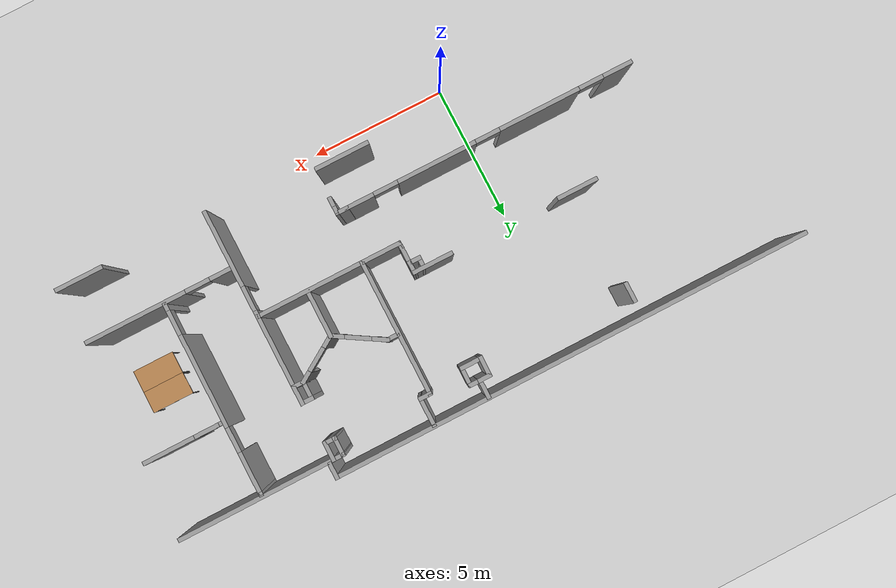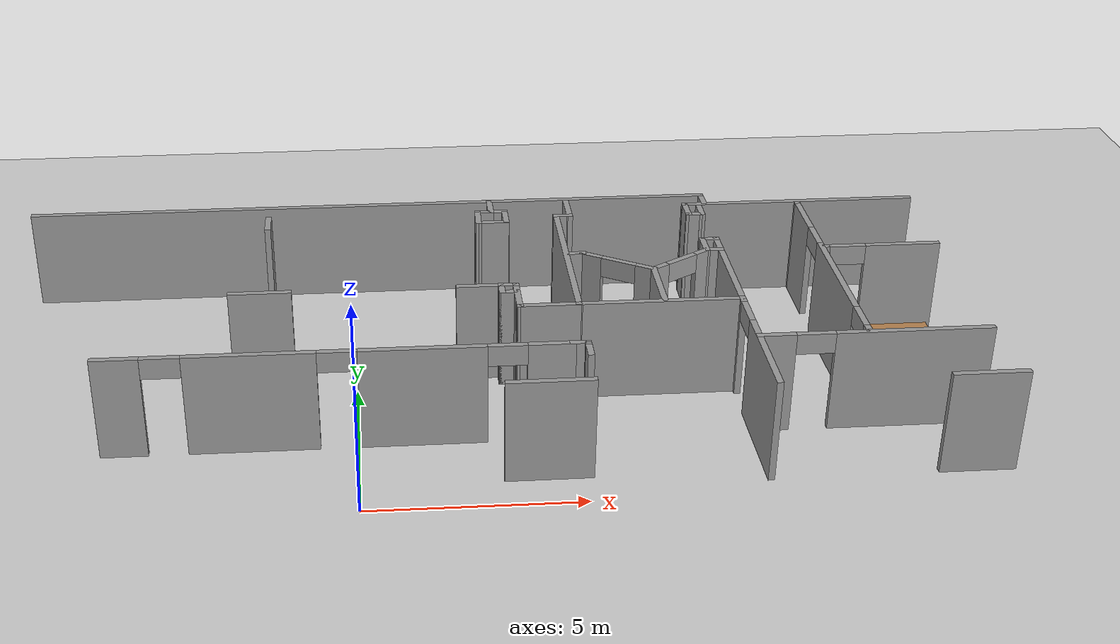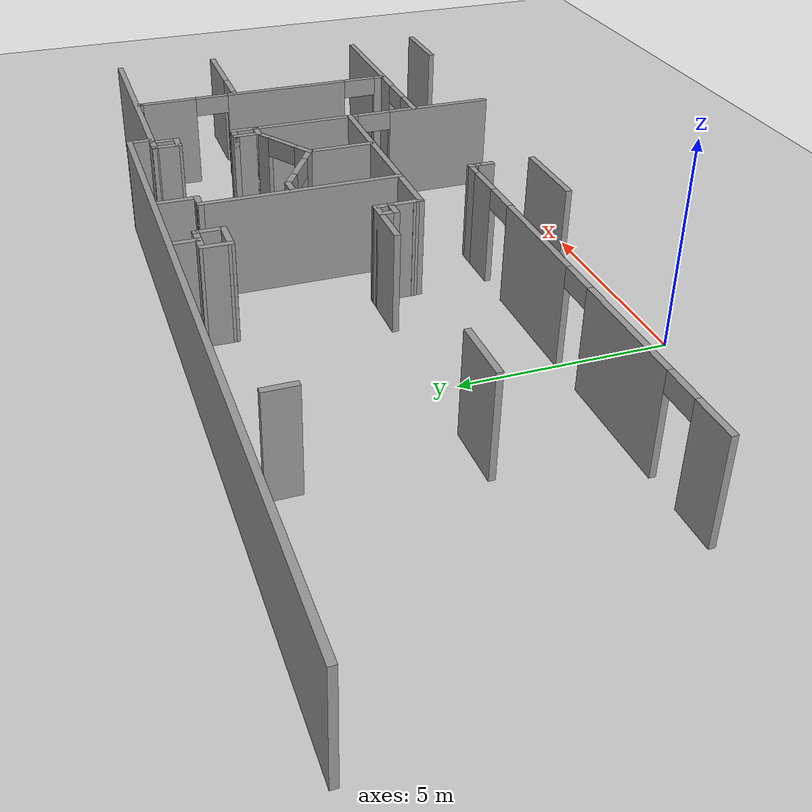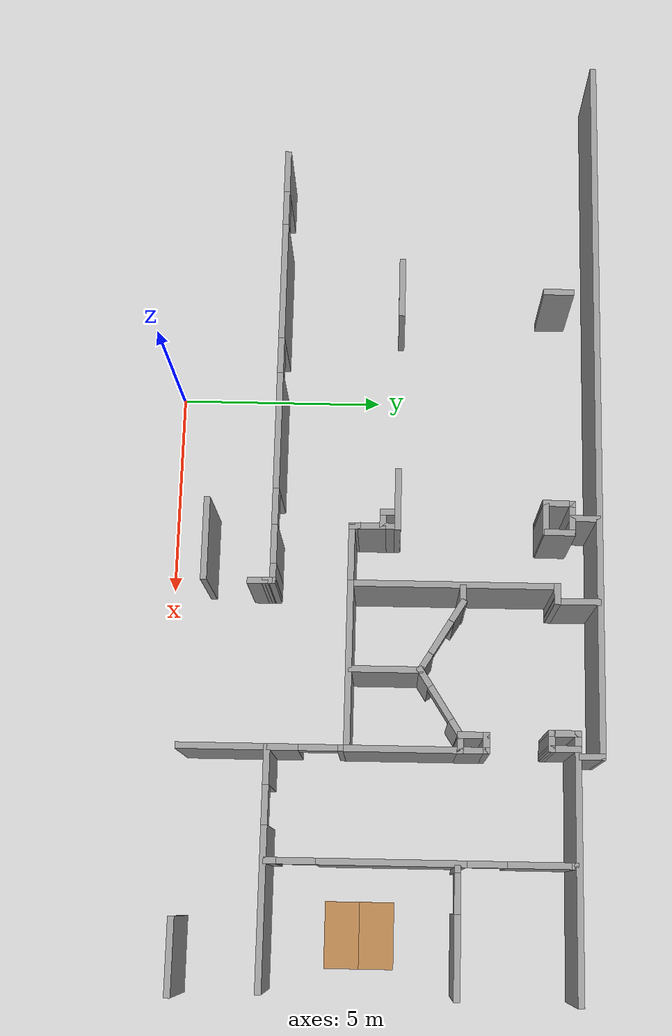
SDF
<sdf version="1.6">
 <world name="default">
  <model name="ground_plane">
   <static>1</static>
   <link name="link">
    <collision name="collision">
     <geometry><plane><normal>0 0 1</normal><size>100 100</size></plane></geometry>
     <surface><friction><ode><mu>100</mu><mu2>50</mu2></ode></friction></surface>
    </collision>
    <visual name="visual">
     <cast_shadows>0</cast_shadows>
     <geometry><plane><normal>0 0 1</normal><size>100 100</size></plane></geometry>
     <material>
      <script><uri>file://media/materials/scripts/gazebo.material</uri><name>Gazebo/Grey</name></script>
     </material>
    </visual>
   </link>
  </model>
  <model name="office02">
   <pose>-0.0751 -0.58893 0 0 -0 0</pose>
   <link name="Wall_150">
    <pose>9.1374 3.11262 0 0 -0 1.5708</pose>
    <visual name="Wall_150_Visual_0">
     <pose>-0.589768 0 1.25 0 -0 0</pose>
     <geometry><box><size>2.82046 0.15 2.5</size></box></geometry>
     <material>
      <script><uri>file://media/materials/scripts/gazebo.material</uri><name>Gazebo/Grey</name></script>
      <ambient>1 1 1 1</ambient>
     </material>
     <meta><layer>0</layer></meta>
    </visual>
    <collision name="Wall_150_Collision_0">
     <geometry><box><size>2.82046 0.15 2.5</size></box></geometry>
     <pose>-0.589768 0 1.25 0 -0 0</pose>
    </collision>
    <visual name="Wall_150_Visual_1">
     <pose>1.86023 0 1.25 0 -0 0</pose>
     <geometry><box><size>0.279535 0.15 2.5</size></box></geometry>
     <material>
      <script><uri>file://media/materials/scripts/gazebo.material</uri><name>Gazebo/Grey</name></script>
      <ambient>1 1 1 1</ambient>
     </material>
     <meta><layer>0</layer></meta>
    </visual>
    <collision name="Wall_150_Collision_1">
     <geometry><box><size>0.279535 0.15 2.5</size></box></geometry>
     <pose>1.86023 0 1.25 0 -0 0</pose>
    </collision>
    <visual name="Wall_150_Visual_2">
     <pose>1.27046 0 2.25 0 -0 0</pose>
     <geometry><box><size>0.9 0.15 0.5</size></box></geometry>
     <material>
      <script><uri>file://media/materials/scripts/gazebo.material</uri><name>Gazebo/Grey</name></script>
      <ambient>1 1 1 1</ambient>
     </material>
     <meta><layer>0</layer></meta>
    </visual>
    <collision name="Wall_150_Collision_2">
     <geometry><box><size>0.9 0.15 0.5</size></box></geometry>
     <pose>1.27046 0 2.25 0 -0 0</pose>
    </collision>
   </link>
   <link name="Wall_151">
    <collision name="Wall_151_Collision">
     <geometry><box><size>4 0.15 2.5</size></box></geometry>
     <pose>0 0 1.25 0 -0 0</pose>
    </collision>
    <visual name="Wall_151_Visual">
     <pose>0 0 1.25 0 -0 0</pose>
     <geometry><box><size>4 0.15 2.5</size></box></geometry>
     <material>
      <script><uri>file://media/materials/scripts/gazebo.material</uri><name>Gazebo/Grey</name></script>
      <ambient>1 1 1 1</ambient>
     </material>
     <meta><layer>0</layer></meta>
    </visual>
    <pose>7.2124 5.03762 0 0 -0 3.14159</pose>
   </link>
   <link name="Wall_153">
    <collision name="Wall_153_Collision">
     <geometry><box><size>5 0.15 2.5</size></box></geometry>
     <pose>0 0 1.25 0 -0 0</pose>
    </collision>
    <visual name="Wall_153_Visual">
     <pose>0 0 1.25 0 -0 0</pose>
     <geometry><box><size>5 0.15 2.5</size></box></geometry>
     <material>
      <script><uri>file://media/materials/scripts/gazebo.material</uri><name>Gazebo/Grey</name></script>
      <ambient>1 1 1 1</ambient>
     </material>
     <meta><layer>0</layer></meta>
    </visual>
    <pose>5.2874 7.46262 0 0 -0 1.5708</pose>
   </link>
   <link name="Wall_154">
    <collision name="Wall_154_Collision">
     <geometry><box><size>0.5 0.15 2.5</size></box></geometry>
     <pose>0 0 1.25 0 -0 0</pose>
    </collision>
    <visual name="Wall_154_Visual">
     <pose>0 0 1.25 0 -0 0</pose>
     <geometry><box><size>0.5 0.15 2.5</size></box></geometry>
     <material>
      <script><uri>file://media/materials/scripts/gazebo.material</uri><name>Gazebo/Grey</name></script>
      <ambient>1 1 1 1</ambient>
     </material>
     <meta><layer>0</layer></meta>
    </visual>
    <pose>5.46235 9.88749 0 0 -0 -0.000714</pose>
   </link>
   <link name="Wall_155">
    <collision name="Wall_155_Collision">
     <geometry><box><size>1.1 0.15 2.5</size></box></geometry>
     <pose>0 0 1.25 0 -0 0</pose>
    </collision>
    <visual name="Wall_155_Visual">
     <pose>0 0 1.25 0 -0 0</pose>
     <geometry><box><size>1.1 0.15 2.5</size></box></geometry>
     <material>
      <script><uri>file://media/materials/scripts/gazebo.material</uri><name>Gazebo/Grey</name></script>
      <ambient>1 1 1 1</ambient>
     </material>
     <meta><layer>0</layer></meta>
    </visual>
    <pose>5.6373 10.3624 0 0 -0 1.5708</pose>
   </link>
   <link name="Wall_181">
    <collision name="Wall_181_Collision">
     <geometry><box><size>1.75 0.15 2.5</size></box></geometry>
     <pose>0 0 1.25 0 -0 0</pose>
    </collision>
    <visual name="Wall_181_Visual">
     <pose>0 0 1.25 0 -0 0</pose>
     <geometry><box><size>1.75 0.15 2.5</size></box></geometry>
     <material>
      <script><uri>file://media/materials/scripts/gazebo.material</uri><name>Gazebo/Grey</name></script>
      <ambient>1 1 1 1</ambient>
     </material>
     <meta><layer>0</layer></meta>
    </visual>
    <pose>13.8007 1.21968 0 0 -0 0</pose>
   </link>
   <link name="Wall_183">
    <pose>11.8204 3.21781 0 0 -0 0</pose>
    <visual name="Wall_183_Visual_0">
     <pose>-2.28982 0 1.25 0 -0 0</pose>
     <geometry><box><size>0.920353 0.15 2.5</size></box></geometry>
     <material>
      <script><uri>file://media/materials/scripts/gazebo.material</uri><name>Gazebo/Grey</name></script>
      <ambient>1 1 1 1</ambient>
     </material>
     <meta><layer>0</layer></meta>
    </visual>
    <collision name="Wall_183_Collision_0">
     <geometry><box><size>0.920353 0.15 2.5</size></box></geometry>
     <pose>-2.28982 0 1.25 0 -0 0</pose>
    </collision>
    <visual name="Wall_183_Visual_1">
     <pose>0.910176 0 1.25 0 -0 0</pose>
     <geometry><box><size>3.67965 0.15 2.5</size></box></geometry>
     <material>
      <script><uri>file://media/materials/scripts/gazebo.material</uri><name>Gazebo/Grey</name></script>
      <ambient>1 1 1 1</ambient>
     </material>
     <meta><layer>0</layer></meta>
    </visual>
    <collision name="Wall_183_Collision_1">
     <geometry><box><size>3.67965 0.15 2.5</size></box></geometry>
     <pose>0.910176 0 1.25 0 -0 0</pose>
    </collision>
    <visual name="Wall_183_Visual_2">
     <pose>-1.37965 0 2.25 0 -0 0</pose>
     <geometry><box><size>0.9 0.15 0.5</size></box></geometry>
     <material>
      <script><uri>file://media/materials/scripts/gazebo.material</uri><name>Gazebo/Grey</name></script>
      <ambient>1 1 1 1</ambient>
     </material>
     <meta><layer>0</layer></meta>
    </visual>
    <collision name="Wall_183_Collision_2">
     <geometry><box><size>0.9 0.15 0.5</size></box></geometry>
     <pose>-1.37965 0 2.25 0 -0 0</pose>
    </collision>
   </link>
   <link name="Wall_185">
    <pose>11.6733 6.76637 0 0 -0 -1.5708</pose>
    <visual name="Wall_185_Visual_0">
     <pose>-2.74906 0 1.25 0 -0 0</pose>
     <geometry><box><size>1.60189 0.15 2.5</size></box></geometry>
     <material>
      <script><uri>file://media/materials/scripts/gazebo.material</uri><name>Gazebo/Grey</name></script>
      <ambient>1 1 1 1</ambient>
     </material>
     <meta><layer>0</layer></meta>
    </visual>
    <collision name="Wall_185_Collision_0">
     <geometry><box><size>1.60189 0.15 2.5</size></box></geometry>
     <pose>-2.74906 0 1.25 0 -0 0</pose>
    </collision>
    <visual name="Wall_185_Visual_1">
     <pose>0.654378 0 1.25 0 -0 0</pose>
     <geometry><box><size>3.40498 0.15 2.5</size></box></geometry>
     <material>
      <script><uri>file://media/materials/scripts/gazebo.material</uri><name>Gazebo/Grey</name></script>
      <ambient>1 1 1 1</ambient>
     </material>
     <meta><layer>0</layer></meta>
    </visual>
    <collision name="Wall_185_Collision_1">
     <geometry><box><size>3.40498 0.15 2.5</size></box></geometry>
     <pose>0.654378 0 1.25 0 -0 0</pose>
    </collision>
    <visual name="Wall_185_Visual_2">
     <pose>3.40343 0 1.25 0 -0 0</pose>
     <geometry><box><size>0.293131 0.15 2.5</size></box></geometry>
     <material>
      <script><uri>file://media/materials/scripts/gazebo.material</uri><name>Gazebo/Grey</name></script>
      <ambient>1 1 1 1</ambient>
     </material>
     <meta><layer>0</layer></meta>
    </visual>
    <collision name="Wall_185_Collision_2">
     <geometry><box><size>0.293131 0.15 2.5</size></box></geometry>
     <pose>3.40343 0 1.25 0 -0 0</pose>
    </collision>
    <visual name="Wall_185_Visual_3">
     <pose>-1.49811 0 2.25 0 -0 0</pose>
     <geometry><box><size>0.9 0.15 0.5</size></box></geometry>
     <material>
      <script><uri>file://media/materials/scripts/gazebo.material</uri><name>Gazebo/Grey</name></script>
      <ambient>1 1 1 1</ambient>
     </material>
     <meta><layer>0</layer></meta>
    </visual>
    <collision name="Wall_185_Collision_3">
     <geometry><box><size>0.9 0.15 0.5</size></box></geometry>
     <pose>-1.49811 0 2.25 0 -0 0</pose>
    </collision>
    <visual name="Wall_185_Visual_4">
     <pose>2.80687 0 2.25 0 -0 0</pose>
     <geometry><box><size>0.9 0.15 0.5</size></box></geometry>
     <material>
      <script><uri>file://media/materials/scripts/gazebo.material</uri><name>Gazebo/Grey</name></script>
      <ambient>1 1 1 1</ambient>
     </material>
     <meta><layer>0</layer></meta>
    </visual>
    <collision name="Wall_185_Collision_4">
     <geometry><box><size>0.9 0.15 0.5</size></box></geometry>
     <pose>2.80687 0 2.25 0 -0 0</pose>
    </collision>
   </link>
   <link name="Wall_187">
    <pose>13.1703 7.60137 0 0 -0 0</pose>
    <visual name="Wall_187_Visual_0">
     <pose>-1.38981 0 1.25 0 -0 0</pose>
     <geometry><box><size>0.170376 0.15 2.5</size></box></geometry>
     <material>
      <script><uri>file://media/materials/scripts/gazebo.material</uri><name>Gazebo/Grey</name></script>
      <ambient>1 1 1 1</ambient>
     </material>
     <meta><layer>0</layer></meta>
    </visual>
    <collision name="Wall_187_Collision_0">
     <geometry><box><size>0.170376 0.15 2.5</size></box></geometry>
     <pose>-1.38981 0 1.25 0 -0 0</pose>
    </collision>
    <visual name="Wall_187_Visual_1">
     <pose>0.535188 0 1.25 0 -0 0</pose>
     <geometry><box><size>1.87962 0.15 2.5</size></box></geometry>
     <material>
      <script><uri>file://media/materials/scripts/gazebo.material</uri><name>Gazebo/Grey</name></script>
      <ambient>1 1 1 1</ambient>
     </material>
     <meta><layer>0</layer></meta>
    </visual>
    <collision name="Wall_187_Collision_1">
     <geometry><box><size>1.87962 0.15 2.5</size></box></geometry>
     <pose>0.535188 0 1.25 0 -0 0</pose>
    </collision>
    <visual name="Wall_187_Visual_2">
     <pose>-0.854624 0 2.25 0 -0 0</pose>
     <geometry><box><size>0.9 0.15 0.5</size></box></geometry>
     <material>
      <script><uri>file://media/materials/scripts/gazebo.material</uri><name>Gazebo/Grey</name></script>
      <ambient>1 1 1 1</ambient>
     </material>
     <meta><layer>0</layer></meta>
    </visual>
    <collision name="Wall_187_Collision_2">
     <geometry><box><size>0.9 0.15 0.5</size></box></geometry>
     <pose>-0.854624 0 2.25 0 -0 0</pose>
    </collision>
   </link>
   <link name="Wall_189">
    <collision name="Wall_189_Collision">
     <geometry><box><size>2.75 0.15 2.5</size></box></geometry>
     <pose>0 0 1.25 0 -0 0</pose>
    </collision>
    <visual name="Wall_189_Visual">
     <pose>0 0 1.25 0 -0 0</pose>
     <geometry><box><size>2.75 0.15 2.5</size></box></geometry>
     <material>
      <script><uri>file://media/materials/scripts/gazebo.material</uri><name>Gazebo/Grey</name></script>
      <ambient>1 1 1 1</ambient>
     </material>
     <meta><layer>0</layer></meta>
    </visual>
    <pose>9.1374 6.33762 0 0 -0 1.5708</pose>
   </link>
   <link name="Wall_19">
    <collision name="Wall_19_Collision">
     <geometry><box><size>0.626189 0.15 2.5</size></box></geometry>
     <pose>0 0 1.25 0 -0 0</pose>
    </collision>
    <visual name="Wall_19_Visual">
     <pose>0 0 1.25 0 -0 0</pose>
     <geometry><box><size>0.626189 0.15 2.5</size></box></geometry>
     <material>
      <script><uri>file://media/materials/scripts/gazebo.material</uri><name>Gazebo/Grey</name></script>
      <ambient>1 1 1 1</ambient>
     </material>
     <meta><layer>0</layer></meta>
    </visual>
    <pose>9.23158 10.6582 0 0 -0 1.57661</pose>
   </link>
   <link name="Wall_191">
    <collision name="Wall_191_Collision">
     <geometry><box><size>0.75 0.15 2.5</size></box></geometry>
     <pose>0 0 1.25 0 -0 0</pose>
    </collision>
    <visual name="Wall_191_Visual">
     <pose>0 0 1.25 0 -0 0</pose>
     <geometry><box><size>0.75 0.15 2.5</size></box></geometry>
     <material>
      <script><uri>file://media/materials/scripts/gazebo.material</uri><name>Gazebo/Grey</name></script>
      <ambient>1 1 1 1</ambient>
     </material>
     <meta><layer>0</layer></meta>
    </visual>
    <pose>9.1374 7.93762 0 0 -0 1.5708</pose>
   </link>
   <link name="Wall_192">
    <collision name="Wall_192_Collision">
     <geometry><box><size>0.5 0.15 2.5</size></box></geometry>
     <pose>0 0 1.25 0 -0 0</pose>
    </collision>
    <visual name="Wall_192_Visual">
     <pose>0 0 1.25 0 -0 0</pose>
     <geometry><box><size>0.5 0.15 2.5</size></box></geometry>
     <material>
      <script><uri>file://media/materials/scripts/gazebo.material</uri><name>Gazebo/Grey</name></script>
      <ambient>1 1 1 1</ambient>
     </material>
     <meta><layer>0</layer></meta>
    </visual>
    <pose>8.9624 8.23762 0 0 -0 3.14159</pose>
   </link>
   <link name="Wall_193">
    <collision name="Wall_193_Collision">
     <geometry><box><size>0.75 0.15 2.5</size></box></geometry>
     <pose>0 0 1.25 0 -0 0</pose>
    </collision>
    <visual name="Wall_193_Visual">
     <pose>0 0 1.25 0 -0 0</pose>
     <geometry><box><size>0.75 0.15 2.5</size></box></geometry>
     <material>
      <script><uri>file://media/materials/scripts/gazebo.material</uri><name>Gazebo/Grey</name></script>
      <ambient>1 1 1 1</ambient>
     </material>
     <meta><layer>0</layer></meta>
    </visual>
    <pose>8.7874 7.93762 0 0 -0 -1.5708</pose>
   </link>
   <link name="Wall_194">
    <collision name="Wall_194_Collision">
     <geometry><box><size>0.5 0.15 2.5</size></box></geometry>
     <pose>0 0 1.25 0 -0 0</pose>
    </collision>
    <visual name="Wall_194_Visual">
     <pose>0 0 1.25 0 -0 0</pose>
     <geometry><box><size>0.5 0.15 2.5</size></box></geometry>
     <material>
      <script><uri>file://media/materials/scripts/gazebo.material</uri><name>Gazebo/Grey</name></script>
      <ambient>1 1 1 1</ambient>
     </material>
     <meta><layer>0</layer></meta>
    </visual>
    <pose>8.9624 7.63762 0 0 -0 0</pose>
   </link>
   <link name="Wall_196">
    <collision name="Wall_196_Collision">
     <geometry><box><size>0.5 0.15 2.5</size></box></geometry>
     <pose>0 0 1.25 0 -0 0</pose>
    </collision>
    <visual name="Wall_196_Visual">
     <pose>0 0 1.25 0 -0 0</pose>
     <geometry><box><size>0.5 0.15 2.5</size></box></geometry>
     <material>
      <script><uri>file://media/materials/scripts/gazebo.material</uri><name>Gazebo/Grey</name></script>
      <ambient>1 1 1 1</ambient>
     </material>
     <meta><layer>0</layer></meta>
    </visual>
    <pose>5.53067 7.68134 0 0 -0 0</pose>
   </link>
   <link name="Wall_20">
    <collision name="Wall_20_Collision">
     <geometry><box><size>17.5 0.15 2.5</size></box></geometry>
     <pose>0 0 1.25 0 -0 0</pose>
    </collision>
    <visual name="Wall_20_Visual">
     <pose>0 0 1.25 0 -0 0</pose>
     <geometry><box><size>17.5 0.15 2.5</size></box></geometry>
     <material>
      <script><uri>file://media/materials/scripts/gazebo.material</uri><name>Gazebo/Grey</name></script>
      <ambient>1 1 1 1</ambient>
     </material>
     <meta><layer>0</layer></meta>
    </visual>
    <pose>0.555194 10.8963 0 0 -0 3.14159</pose>
   </link>
   <link name="Wall_200">
    <collision name="Wall_200_Collision">
     <geometry><box><size>1.75 0.15 2.5</size></box></geometry>
     <pose>0 0 1.25 0 -0 0</pose>
    </collision>
    <visual name="Wall_200_Visual">
     <pose>0 0 1.25 0 -0 0</pose>
     <geometry><box><size>1.75 0.15 2.5</size></box></geometry>
     <material>
      <script><uri>file://media/materials/scripts/gazebo.material</uri><name>Gazebo/Grey</name></script>
      <ambient>1 1 1 1</ambient>
     </material>
     <meta><layer>0</layer></meta>
    </visual>
    <pose>7.30982 5.90134 0 0 -0 -1.5708</pose>
   </link>
   <link name="Wall_202">
    <pose>6.50774 7.19134 0 0 -0 -0.54841</pose>
    <visual name="Wall_202_Visual_0">
     <pose>-0.716821 0 1.25 0 -0 0</pose>
     <geometry><box><size>0.596161 0.15 2.5</size></box></geometry>
     <material>
      <script><uri>file://media/materials/scripts/gazebo.material</uri><name>Gazebo/Grey</name></script>
      <ambient>1 1 1 1</ambient>
     </material>
     <meta><layer>0</layer></meta>
    </visual>
    <collision name="Wall_202_Collision_0">
     <geometry><box><size>0.596161 0.15 2.5</size></box></geometry>
     <pose>-0.716821 0 1.25 0 -0 0</pose>
    </collision>
    <visual name="Wall_202_Visual_1">
     <pose>0.748081 0 1.25 0 -0 0</pose>
     <geometry><box><size>0.533643 0.15 2.5</size></box></geometry>
     <material>
      <script><uri>file://media/materials/scripts/gazebo.material</uri><name>Gazebo/Grey</name></script>
      <ambient>1 1 1 1</ambient>
     </material>
     <meta><layer>0</layer></meta>
    </visual>
    <collision name="Wall_202_Collision_1">
     <geometry><box><size>0.533643 0.15 2.5</size></box></geometry>
     <pose>0.748081 0 1.25 0 -0 0</pose>
    </collision>
    <visual name="Wall_202_Visual_2">
     <pose>0.031259 0 2.25 0 -0 0</pose>
     <geometry><box><size>0.9 0.15 0.5</size></box></geometry>
     <material>
      <script><uri>file://media/materials/scripts/gazebo.material</uri><name>Gazebo/Grey</name></script>
      <ambient>1 1 1 1</ambient>
     </material>
     <meta><layer>0</layer></meta>
    </visual>
    <collision name="Wall_202_Collision_2">
     <geometry><box><size>0.9 0.15 0.5</size></box></geometry>
     <pose>0.031259 0 2.25 0 -0 0</pose>
    </collision>
   </link>
   <link name="Wall_203">
    <pose>8.04861 7.16948 0 0 -0 0.564798</pose>
    <visual name="Wall_203_Visual_0">
     <pose>-0.689779 0 1.25 0 -0 0</pose>
     <geometry><box><size>0.519689 0.15 2.5</size></box></geometry>
     <material>
      <script><uri>file://media/materials/scripts/gazebo.material</uri><name>Gazebo/Grey</name></script>
      <ambient>1 1 1 1</ambient>
     </material>
     <meta><layer>0</layer></meta>
    </visual>
    <collision name="Wall_203_Collision_0">
     <geometry><box><size>0.519689 0.15 2.5</size></box></geometry>
     <pose>-0.689779 0 1.25 0 -0 0</pose>
    </collision>
    <visual name="Wall_203_Visual_1">
     <pose>0.709844 0 1.25 0 -0 0</pose>
     <geometry><box><size>0.479557 0.15 2.5</size></box></geometry>
     <material>
      <script><uri>file://media/materials/scripts/gazebo.material</uri><name>Gazebo/Grey</name></script>
      <ambient>1 1 1 1</ambient>
     </material>
     <meta><layer>0</layer></meta>
    </visual>
    <collision name="Wall_203_Collision_1">
     <geometry><box><size>0.479557 0.15 2.5</size></box></geometry>
     <pose>0.709844 0 1.25 0 -0 0</pose>
    </collision>
    <visual name="Wall_203_Visual_2">
     <pose>0.020066 0 2.25 0 -0 0</pose>
     <geometry><box><size>0.9 0.15 0.5</size></box></geometry>
     <material>
      <script><uri>file://media/materials/scripts/gazebo.material</uri><name>Gazebo/Grey</name></script>
      <ambient>1 1 1 1</ambient>
     </material>
     <meta><layer>0</layer></meta>
    </visual>
    <collision name="Wall_203_Collision_2">
     <geometry><box><size>0.9 0.15 0.5</size></box></geometry>
     <pose>0.020066 0 2.25 0 -0 0</pose>
    </collision>
   </link>
   <link name="Wall_206">
    <collision name="Wall_206_Collision">
     <geometry><box><size>0.15 0.15 2.5</size></box></geometry>
     <pose>0 0 1.25 0 -0 0</pose>
    </collision>
    <visual name="Wall_206_Visual">
     <pose>0 0 1.25 0 -0 0</pose>
     <geometry><box><size>0.15 0.15 2.5</size></box></geometry>
     <material>
      <script><uri>file://media/materials/scripts/gazebo.material</uri><name>Gazebo/Grey</name></script>
      <ambient>1 1 1 1</ambient>
     </material>
     <meta><layer>0</layer></meta>
    </visual>
    <pose>8.71413 10.3355 0 0 -0 0</pose>
   </link>
   <link name="Wall_214">
    <collision name="Wall_214_Collision">
     <geometry><box><size>6.09283 0.15 2.5</size></box></geometry>
     <pose>0 0 1.25 0 -0 0</pose>
    </collision>
    <visual name="Wall_214_Visual">
     <pose>0 0 1.25 0 -0 0</pose>
     <geometry><box><size>6.09283 0.15 2.5</size></box></geometry>
     <material>
      <script><uri>file://media/materials/scripts/gazebo.material</uri><name>Gazebo/Grey</name></script>
      <ambient>1 1 1 1</ambient>
     </material>
     <meta><layer>0</layer></meta>
    </visual>
    <pose>11.6855 10.3389 0 0 -0 0.00114</pose>
   </link>
   <link name="Wall_216">
    <collision name="Wall_216_Collision">
     <geometry><box><size>0.15 0.15 2.5</size></box></geometry>
     <pose>0 0 1.25 0 -0 0</pose>
    </collision>
    <visual name="Wall_216_Visual">
     <pose>0 0 1.25 0 -0 0</pose>
     <geometry><box><size>0.15 0.15 2.5</size></box></geometry>
     <material>
      <script><uri>file://media/materials/scripts/gazebo.material</uri><name>Gazebo/Grey</name></script>
      <ambient>1 1 1 1</ambient>
     </material>
     <meta><layer>0</layer></meta>
    </visual>
    <pose>11.6733 10.2414 0 0 -0 0</pose>
   </link>
   <link name="Wall_217">
    <collision name="Wall_217_Collision">
     <geometry><box><size>0.15 0.15 2.5</size></box></geometry>
     <pose>0 0 1.25 0 -0 0</pose>
    </collision>
    <visual name="Wall_217_Visual">
     <pose>0 0 1.25 0 -0 0</pose>
     <geometry><box><size>0.15 0.15 2.5</size></box></geometry>
     <material>
      <script><uri>file://media/materials/scripts/gazebo.material</uri><name>Gazebo/Grey</name></script>
      <ambient>1 1 1 1</ambient>
     </material>
     <meta><layer>0</layer></meta>
    </visual>
    <pose>11.6733 10.2414 0 0 -0 0</pose>
   </link>
   <link name="Wall_227">
    <collision name="Wall_227_Collision">
     <geometry><box><size>0.15 0.15 2.5</size></box></geometry>
     <pose>0 0 1.25 0 -0 0</pose>
    </collision>
    <visual name="Wall_227_Visual">
     <pose>0 0 1.25 0 -0 0</pose>
     <geometry><box><size>0.15 0.15 2.5</size></box></geometry>
     <material>
      <script><uri>file://media/materials/scripts/gazebo.material</uri><name>Gazebo/Grey</name></script>
      <ambient>0 0 0 1</ambient>
     </material>
     <meta><layer>0</layer></meta>
    </visual>
    <pose>8.71413 10.3355 0 0 -0 0</pose>
   </link>
   <link name="Wall_228">
    <collision name="Wall_228_Collision">
     <geometry><box><size>0.75 0.15 2.5</size></box></geometry>
     <pose>0 0 1.25 0 -0 0</pose>
    </collision>
    <visual name="Wall_228_Visual">
     <pose>0 0 1.25 0 -0 0</pose>
     <geometry><box><size>0.75 0.15 2.5</size></box></geometry>
     <material>
      <script><uri>file://media/materials/scripts/gazebo.material</uri><name>Gazebo/Grey</name></script>
      <ambient>1 1 1 1</ambient>
     </material>
     <meta><layer>0</layer></meta>
    </visual>
    <pose>8.71413 10.0355 0 0 -0 -1.5708</pose>
   </link>
   <link name="Wall_229">
    <collision name="Wall_229_Collision">
     <geometry><box><size>0.500196 0.15 2.5</size></box></geometry>
     <pose>0 0 1.25 0 -0 0</pose>
    </collision>
    <visual name="Wall_229_Visual">
     <pose>0 0 1.25 0 -0 0</pose>
     <geometry><box><size>0.500196 0.15 2.5</size></box></geometry>
     <material>
      <script><uri>file://media/materials/scripts/gazebo.material</uri><name>Gazebo/Grey</name></script>
      <ambient>1 1 1 1</ambient>
     </material>
     <meta><layer>0</layer></meta>
    </visual>
    <pose>8.88921 9.73344 0 0 -0 -0.011853</pose>
   </link>
   <link name="Wall_230">
    <collision name="Wall_230_Collision">
     <geometry><box><size>0.75 0.15 2.5</size></box></geometry>
     <pose>0 0 1.25 0 -0 0</pose>
    </collision>
    <visual name="Wall_230_Visual">
     <pose>0 0 1.25 0 -0 0</pose>
     <geometry><box><size>0.75 0.15 2.5</size></box></geometry>
     <material>
      <script><uri>file://media/materials/scripts/gazebo.material</uri><name>Gazebo/Grey</name></script>
      <ambient>1 1 1 1</ambient>
     </material>
     <meta><layer>0</layer></meta>
    </visual>
    <pose>9.0643 10.0314 0 0 -0 1.5708</pose>
   </link>
   <link name="Wall_245">
    <collision name="Wall_245_Collision">
     <geometry><box><size>1.5 0.15 2.5</size></box></geometry>
     <pose>0 0 1.25 0 -0 0</pose>
    </collision>
    <visual name="Wall_245_Visual">
     <pose>0 0 1.25 0 -0 0</pose>
     <geometry><box><size>1.5 0.15 2.5</size></box></geometry>
     <material>
      <script><uri>file://media/materials/scripts/gazebo.material</uri><name>Gazebo/Grey</name></script>
      <ambient>1 1 1 1</ambient>
     </material>
     <meta><layer>0</layer></meta>
    </visual>
    <pose>3.23006 6.11683 0 0 -0 0</pose>
   </link>
   <link name="Wall_246">
    <collision name="Wall_246_Collision">
     <geometry><box><size>0.5 0.15 2.5</size></box></geometry>
     <pose>0 0 1.25 0 -0 0</pose>
    </collision>
    <visual name="Wall_246_Visual">
     <pose>0 0 1.25 0 -0 0</pose>
     <geometry><box><size>0.5 0.15 2.5</size></box></geometry>
     <material>
      <script><uri>file://media/materials/scripts/gazebo.material</uri><name>Gazebo/Grey</name></script>
      <ambient>1 1 1 1</ambient>
     </material>
     <meta><layer>0</layer></meta>
    </visual>
    <pose>3.90506 5.94183 0 0 -0 -1.5708</pose>
   </link>
   <link name="Wall_247">
    <collision name="Wall_247_Collision">
     <geometry><box><size>0.5 0.15 2.5</size></box></geometry>
     <pose>0 0 1.25 0 -0 0</pose>
    </collision>
    <visual name="Wall_247_Visual">
     <pose>0 0 1.25 0 -0 0</pose>
     <geometry><box><size>0.5 0.15 2.5</size></box></geometry>
     <material>
      <script><uri>file://media/materials/scripts/gazebo.material</uri><name>Gazebo/Grey</name></script>
      <ambient>1 1 1 1</ambient>
     </material>
     <meta><layer>0</layer></meta>
    </visual>
    <pose>3.73006 5.76683 0 0 -0 3.14159</pose>
   </link>
   <link name="Wall_249">
    <collision name="Wall_249_Collision">
     <geometry><box><size>0.5 0.15 2.5</size></box></geometry>
     <pose>0 0 1.25 0 -0 0</pose>
    </collision>
    <visual name="Wall_249_Visual">
     <pose>0 0 1.25 0 -0 0</pose>
     <geometry><box><size>0.5 0.15 2.5</size></box></geometry>
     <material>
      <script><uri>file://media/materials/scripts/gazebo.material</uri><name>Gazebo/Grey</name></script>
      <ambient>1 1 1 1</ambient>
     </material>
     <meta><layer>0</layer></meta>
    </visual>
    <pose>3.55506 5.94183 0 0 -0 1.5708</pose>
   </link>
   <link name="Wall_251">
    <collision name="Wall_251_Collision">
     <geometry><box><size>0.75 0.15 2.5</size></box></geometry>
     <pose>0 0 1.25 0 -0 0</pose>
    </collision>
    <visual name="Wall_251_Visual">
     <pose>0 0 1.25 0 -0 0</pose>
     <geometry><box><size>0.75 0.15 2.5</size></box></geometry>
     <material>
      <script><uri>file://media/materials/scripts/gazebo.material</uri><name>Gazebo/Grey</name></script>
      <ambient>1 1 1 1</ambient>
     </material>
     <meta><layer>0</layer></meta>
    </visual>
    <pose>3.90506 5.46683 0 0 -0 -1.5708</pose>
   </link>
   <link name="Wall_252">
    <collision name="Wall_252_Collision">
     <geometry><box><size>0.280384 0.15 2.5</size></box></geometry>
     <pose>0 0 1.25 0 -0 0</pose>
    </collision>
    <visual name="Wall_252_Visual">
     <pose>0 0 1.25 0 -0 0</pose>
     <geometry><box><size>0.280384 0.15 2.5</size></box></geometry>
     <material>
      <script><uri>file://media/materials/scripts/gazebo.material</uri><name>Gazebo/Grey</name></script>
      <ambient>1 1 1 1</ambient>
     </material>
     <meta><layer>0</layer></meta>
    </visual>
    <pose>3.91006 5.10183 0 0 -0 -1.49402</pose>
   </link>
   <link name="Wall_253">
    <collision name="Wall_253_Collision">
     <geometry><box><size>1.5 0.15 2.5</size></box></geometry>
     <pose>0 0 1.25 0 -0 0</pose>
    </collision>
    <visual name="Wall_253_Visual">
     <pose>0 0 1.25 0 -0 0</pose>
     <geometry><box><size>1.5 0.15 2.5</size></box></geometry>
     <material>
      <script><uri>file://media/materials/scripts/gazebo.material</uri><name>Gazebo/Grey</name></script>
      <ambient>1 1 1 1</ambient>
     </material>
     <meta><layer>0</layer></meta>
    </visual>
    <pose>4.58506 5.03683 0 0 -0 0</pose>
   </link>
   <link name="Wall_255">
    <collision name="Wall_255_Collision">
     <geometry><box><size>0.75 0.15 2.5</size></box></geometry>
     <pose>0 0 1.25 0 -0 0</pose>
    </collision>
    <visual name="Wall_255_Visual">
     <pose>0 0 1.25 0 -0 0</pose>
     <geometry><box><size>0.75 0.15 2.5</size></box></geometry>
     <material>
      <script><uri>file://media/materials/scripts/gazebo.material</uri><name>Gazebo/Grey</name></script>
      <ambient>1 1 1 1</ambient>
     </material>
     <meta><layer>0</layer></meta>
    </visual>
    <pose>3.63098 10.5529 0 0 -0 -1.5708</pose>
   </link>
   <link name="Wall_256">
    <collision name="Wall_256_Collision">
     <geometry><box><size>0.5 0.15 2.5</size></box></geometry>
     <pose>0 0 1.25 0 -0 0</pose>
    </collision>
    <visual name="Wall_256_Visual">
     <pose>0 0 1.25 0 -0 0</pose>
     <geometry><box><size>0.5 0.15 2.5</size></box></geometry>
     <material>
      <script><uri>file://media/materials/scripts/gazebo.material</uri><name>Gazebo/Grey</name></script>
      <ambient>1 1 1 1</ambient>
     </material>
     <meta><layer>0</layer></meta>
    </visual>
    <pose>3.45598 10.2529 0 0 -0 3.14159</pose>
   </link>
   <link name="Wall_257">
    <collision name="Wall_257_Collision">
     <geometry><box><size>0.776675 0.15 2.5</size></box></geometry>
     <pose>0 0 1.25 0 -0 0</pose>
    </collision>
    <visual name="Wall_257_Visual">
     <pose>0 0 1.25 0 -0 0</pose>
     <geometry><box><size>0.776675 0.15 2.5</size></box></geometry>
     <material>
      <script><uri>file://media/materials/scripts/gazebo.material</uri><name>Gazebo/Grey</name></script>
      <ambient>1 1 1 1</ambient>
     </material>
     <meta><layer>0</layer></meta>
    </visual>
    <pose>3.27414 9.93963 0 0 -0 -1.59262</pose>
   </link>
   <link name="Wall_258">
    <collision name="Wall_258_Collision">
     <geometry><box><size>0.85 0.15 2.5</size></box></geometry>
     <pose>0 0 1.25 0 -0 0</pose>
    </collision>
    <visual name="Wall_258_Visual">
     <pose>0 0 1.25 0 -0 0</pose>
     <geometry><box><size>0.85 0.15 2.5</size></box></geometry>
     <material>
      <script><uri>file://media/materials/scripts/gazebo.material</uri><name>Gazebo/Grey</name></script>
      <ambient>1 1 1 1</ambient>
     </material>
     <meta><layer>0</layer></meta>
    </visual>
    <pose>3.6173 9.62637 0 0 -0 0</pose>
   </link>
   <link name="Wall_262">
    <collision name="Wall_262_Collision">
     <geometry><box><size>0.5 0.15 2.5</size></box></geometry>
     <pose>0 0 1.25 0 -0 0</pose>
    </collision>
    <visual name="Wall_262_Visual">
     <pose>0 0 1.25 0 -0 0</pose>
     <geometry><box><size>0.5 0.15 2.5</size></box></geometry>
     <material>
      <script><uri>file://media/materials/scripts/gazebo.material</uri><name>Gazebo/Grey</name></script>
      <ambient>1 1 1 1</ambient>
     </material>
     <meta><layer>0</layer></meta>
    </visual>
    <pose>3.80598 10.2529 0 0 -0 0</pose>
   </link>
   <link name="Wall_264">
    <collision name="Wall_264_Collision">
     <geometry><box><size>0.75 0.15 2.5</size></box></geometry>
     <pose>0 0 1.25 0 -0 0</pose>
    </collision>
    <visual name="Wall_264_Visual">
     <pose>0 0 1.25 0 -0 0</pose>
     <geometry><box><size>0.75 0.15 2.5</size></box></geometry>
     <material>
      <script><uri>file://media/materials/scripts/gazebo.material</uri><name>Gazebo/Grey</name></script>
      <ambient>1 1 1 1</ambient>
     </material>
     <meta><layer>0</layer></meta>
    </visual>
    <pose>3.98098 9.95289 0 0 -0 -1.5708</pose>
   </link>
   <link name="Wall_269">
    <collision name="Wall_269_Collision">
     <geometry><box><size>0.75 0.15 2.5</size></box></geometry>
     <pose>0 0 1.25 0 -0 0</pose>
    </collision>
    <visual name="Wall_269_Visual">
     <pose>0 0 1.25 0 -0 0</pose>
     <geometry><box><size>0.75 0.15 2.5</size></box></geometry>
     <material>
      <script><uri>file://media/materials/scripts/gazebo.material</uri><name>Gazebo/Grey</name></script>
      <ambient>1 1 1 1</ambient>
     </material>
     <meta><layer>0</layer></meta>
    </visual>
    <pose>-2.09465 9.97721 0 0 -0 -1.5708</pose>
   </link>
   <link name="Wall_278">
    <collision name="Wall_278_Collision">
     <geometry><box><size>1.5 0.15 2.5</size></box></geometry>
     <pose>0 0 1.25 0 -0 0</pose>
    </collision>
    <visual name="Wall_278_Visual">
     <pose>0 0 1.25 0 -0 0</pose>
     <geometry><box><size>1.5 0.15 2.5</size></box></geometry>
     <material>
      <script><uri>file://media/materials/scripts/gazebo.material</uri><name>Gazebo/Grey</name></script>
      <ambient>1 1 1 1</ambient>
     </material>
     <meta><layer>0</layer></meta>
    </visual>
    <pose>-2.15324 6.13282 0 0 -0 0</pose>
   </link>
   <link name="Wall_296">
    <pose>-0.376716 3.20543 0 0 -0 -1.2e-05</pose>
    <visual name="Wall_296_Visual_0">
     <pose>-4.83111 0 1.25 0 -0 0</pose>
     <geometry><box><size>1.08777 0.15 2.5</size></box></geometry>
     <material>
      <script><uri>file://media/materials/scripts/gazebo.material</uri><name>Gazebo/Grey</name></script>
      <ambient>1 1 1 1</ambient>
     </material>
     <meta><layer>0</layer></meta>
    </visual>
    <collision name="Wall_296_Collision_0">
     <geometry><box><size>1.08777 0.15 2.5</size></box></geometry>
     <pose>-4.83111 0 1.25 0 -0 0</pose>
    </collision>
    <visual name="Wall_296_Visual_1">
     <pose>-1.89776 0 1.25 0 -0 0</pose>
     <geometry><box><size>2.97893 0.15 2.5</size></box></geometry>
     <material>
      <script><uri>file://media/materials/scripts/gazebo.material</uri><name>Gazebo/Grey</name></script>
      <ambient>1 1 1 1</ambient>
     </material>
     <meta><layer>0</layer></meta>
    </visual>
    <collision name="Wall_296_Collision_1">
     <geometry><box><size>2.97893 0.15 2.5</size></box></geometry>
     <pose>-1.89776 0 1.25 0 -0 0</pose>
    </collision>
    <visual name="Wall_296_Visual_2">
     <pose>1.94104 0 1.25 0 -0 0</pose>
     <geometry><box><size>2.89868 0.15 2.5</size></box></geometry>
     <material>
      <script><uri>file://media/materials/scripts/gazebo.material</uri><name>Gazebo/Grey</name></script>
      <ambient>1 1 1 1</ambient>
     </material>
     <meta><layer>0</layer></meta>
    </visual>
    <collision name="Wall_296_Collision_2">
     <geometry><box><size>2.89868 0.15 2.5</size></box></geometry>
     <pose>1.94104 0 1.25 0 -0 0</pose>
    </collision>
    <visual name="Wall_296_Visual_3">
     <pose>4.83269 0 1.25 0 -0 0</pose>
     <geometry><box><size>1.08462 0.15 2.5</size></box></geometry>
     <material>
      <script><uri>file://media/materials/scripts/gazebo.material</uri><name>Gazebo/Grey</name></script>
      <ambient>1 1 1 1</ambient>
     </material>
     <meta><layer>0</layer></meta>
    </visual>
    <collision name="Wall_296_Collision_3">
     <geometry><box><size>1.08462 0.15 2.5</size></box></geometry>
     <pose>4.83269 0 1.25 0 -0 0</pose>
    </collision>
    <visual name="Wall_296_Visual_4">
     <pose>-3.83723 0 2.25 0 -0 0</pose>
     <geometry><box><size>0.9 0.15 0.5</size></box></geometry>
     <material>
      <script><uri>file://media/materials/scripts/gazebo.material</uri><name>Gazebo/Grey</name></script>
      <ambient>1 1 1 1</ambient>
     </material>
     <meta><layer>0</layer></meta>
    </visual>
    <collision name="Wall_296_Collision_4">
     <geometry><box><size>0.9 0.15 0.5</size></box></geometry>
     <pose>-3.83723 0 2.25 0 -0 0</pose>
    </collision>
    <visual name="Wall_296_Visual_5">
     <pose>0.041704 0 2.25 0 -0 0</pose>
     <geometry><box><size>0.9 0.15 0.5</size></box></geometry>
     <material>
      <script><uri>file://media/materials/scripts/gazebo.material</uri><name>Gazebo/Grey</name></script>
      <ambient>1 1 1 1</ambient>
     </material>
     <meta><layer>0</layer></meta>
    </visual>
    <collision name="Wall_296_Collision_5">
     <geometry><box><size>0.9 0.15 0.5</size></box></geometry>
     <pose>0.041704 0 2.25 0 -0 0</pose>
    </collision>
    <visual name="Wall_296_Visual_6">
     <pose>3.84038 0 2.25 0 -0 0</pose>
     <geometry><box><size>0.9 0.15 0.5</size></box></geometry>
     <material>
      <script><uri>file://media/materials/scripts/gazebo.material</uri><name>Gazebo/Grey</name></script>
      <ambient>1 1 1 1</ambient>
     </material>
     <meta><layer>0</layer></meta>
    </visual>
    <collision name="Wall_296_Collision_6">
     <geometry><box><size>0.9 0.15 0.5</size></box></geometry>
     <pose>3.84038 0 2.25 0 -0 0</pose>
    </collision>
   </link>
   <link name="Wall_297">
    <collision name="Wall_297_Collision">
     <geometry><box><size>0.37 0.15 2.5</size></box></geometry>
     <pose>0 0 1.25 0 -0 0</pose>
    </collision>
    <visual name="Wall_297_Visual">
     <pose>0 0 1.25 0 -0 0</pose>
     <geometry><box><size>0.37 0.15 2.5</size></box></geometry>
     <material>
      <script><uri>file://media/materials/scripts/gazebo.material</uri><name>Gazebo/Grey</name></script>
      <ambient>1 1 1 1</ambient>
     </material>
     <meta><layer>0</layer></meta>
    </visual>
    <pose>5.0333 3.20537 0 0 -0 0</pose>
   </link>
   <link name="Wall_304">
    <collision name="Wall_304_Collision">
     <geometry><box><size>0.5 0.15 2.5</size></box></geometry>
     <pose>0 0 1.25 0 -0 0</pose>
    </collision>
    <visual name="Wall_304_Visual">
     <pose>0 0 1.25 0 -0 0</pose>
     <geometry><box><size>0.5 0.15 2.5</size></box></geometry>
     <material>
      <script><uri>file://media/materials/scripts/gazebo.material</uri><name>Gazebo/Grey</name></script>
      <ambient>1 1 1 1</ambient>
     </material>
     <meta><layer>0</layer></meta>
    </visual>
    <pose>5.26276 2.85375 0 0 -0 1.5708</pose>
   </link>
   <link name="Wall_305">
    <collision name="Wall_305_Collision">
     <geometry><box><size>0.25 0.15 2.5</size></box></geometry>
     <pose>0 0 1.25 0 -0 0</pose>
    </collision>
    <visual name="Wall_305_Visual">
     <pose>0 0 1.25 0 -0 0</pose>
     <geometry><box><size>0.25 0.15 2.5</size></box></geometry>
     <material>
      <script><uri>file://media/materials/scripts/gazebo.material</uri><name>Gazebo/Grey</name></script>
      <ambient>1 1 1 1</ambient>
     </material>
     <meta><layer>0</layer></meta>
    </visual>
    <pose>5.26253 3.07856 0 0 -0 1.57544</pose>
   </link>
   <link name="Wall_306">
    <collision name="Wall_306_Collision">
     <geometry><box><size>0.22 0.15 2.5</size></box></geometry>
     <pose>0 0 1.25 0 -0 0</pose>
    </collision>
    <visual name="Wall_306_Visual">
     <pose>0 0 1.25 0 -0 0</pose>
     <geometry><box><size>0.22 0.15 2.5</size></box></geometry>
     <material>
      <script><uri>file://media/materials/scripts/gazebo.material</uri><name>Gazebo/Grey</name></script>
      <ambient>1 1 1 1</ambient>
     </material>
     <meta><layer>0</layer></meta>
    </visual>
    <pose>5.2623 3.16337 0 0 -0 1.5708</pose>
   </link>
   <link name="Wall_319">
    <collision name="Wall_319_Collision">
     <geometry><box><size>2 0.15 2.5</size></box></geometry>
     <pose>0 0 1.25 0 -0 0</pose>
    </collision>
    <visual name="Wall_319_Visual">
     <pose>0 0 1.25 0 -0 0</pose>
     <geometry><box><size>2 0.15 2.5</size></box></geometry>
     <material>
      <script><uri>file://media/materials/scripts/gazebo.material</uri><name>Gazebo/Grey</name></script>
      <ambient>1 1 1 1</ambient>
     </material>
     <meta><layer>0</layer></meta>
    </visual>
    <pose>4.26349 1.57851 0 0 -0 3.14159</pose>
   </link>
   <static>1</static>
  </model>
  <model name="table_0">
   <static>1</static>
   <link name="link">
    <collision name="surface">
     <pose>0 0 1 0 -0 0</pose>
     <geometry><box><size>1.5 0.8 0.03</size></box></geometry>
     <surface><friction><ode><mu>0.6</mu><mu2>0.6</mu2></ode></friction></surface>
    </collision>
    <visual name="visual1">
     <pose>0 0 1 0 -0 0</pose>
     <geometry><box><size>1.5 0.8 0.03</size></box></geometry>
     <material>
      <script><uri>file://media/materials/scripts/gazebo.material</uri><name>Gazebo/Wood</name></script>
     </material>
    </visual>
    <collision name="front_left_leg">
     <pose>0.68 0.38 0.5 0 -0 0</pose>
     <geometry><cylinder><radius>0.02</radius><length>1</length></cylinder></geometry>
    </collision>
    <visual name="front_left_leg">
     <pose>0.68 0.38 0.5 0 -0 0</pose>
     <geometry><cylinder><radius>0.02</radius><length>1</length></cylinder></geometry>
     <material>
      <script><uri>file://media/materials/scripts/gazebo.material</uri><name>Gazebo/Grey</name></script>
     </material>
    </visual>
    <collision name="front_right_leg">
     <pose>0.68 -0.38 0.5 0 -0 0</pose>
     <geometry><cylinder><radius>0.02</radius><length>1</length></cylinder></geometry>
    </collision>
    <visual name="front_right_leg">
     <pose>0.68 -0.38 0.5 0 -0 0</pose>
     <geometry><cylinder><radius>0.02</radius><length>1</length></cylinder></geometry>
     <material>
      <script><uri>file://media/materials/scripts/gazebo.material</uri><name>Gazebo/Grey</name></script>
     </material>
    </visual>
    <collision name="back_right_leg">
     <pose>-0.68 -0.38 0.5 0 -0 0</pose>
     <geometry><cylinder><radius>0.02</radius><length>1</length></cylinder></geometry>
    </collision>
    <visual name="back_right_leg">
     <pose>-0.68 -0.38 0.5 0 -0 0</pose>
     <geometry><cylinder><radius>0.02</radius><length>1</length></cylinder></geometry>
     <material>
      <script><uri>file://media/materials/scripts/gazebo.material</uri><name>Gazebo/Grey</name></script>
     </material>
    </visual>
    <collision name="back_left_leg">
     <pose>-0.68 0.38 0.5 0 -0 0</pose>
     <geometry><cylinder><radius>0.02</radius><length>1</length></cylinder></geometry>
    </collision>
    <visual name="back_left_leg">
     <pose>-0.68 0.38 0.5 0 -0 0</pose>
     <geometry><cylinder><radius>0.02</radius><length>1</length></cylinder></geometry>
     <material>
      <script><uri>file://media/materials/scripts/gazebo.material</uri><name>Gazebo/Grey</name></script>
     </material>
    </visual>
   </link>
   <pose>13.2175 4.40711 0 0 -0 0</pose>
  </model>
  <model name="table_1">
   <static>1</static>
   <link name="link">
    <collision name="surface">
     <pose>0 0 1 0 -0 0</pose>
     <geometry><box><size>1.5 0.8 0.03</size></box></geometry>
     <surface><friction><ode><mu>0.6</mu><mu2>0.6</mu2></ode></friction></surface>
    </collision>
    <visual name="visual1">
     <pose>0 0 1 0 -0 0</pose>
     <geometry><box><size>1.5 0.8 0.03</size></box></geometry>
     <material>
      <script><uri>file://media/materials/scripts/gazebo.material</uri><name>Gazebo/Wood</name></script>
     </material>
    </visual>
    <collision name="front_left_leg">
     <pose>0.68 0.38 0.5 0 -0 0</pose>
     <geometry><cylinder><radius>0.02</radius><length>1</length></cylinder></geometry>
    </collision>
    <visual name="front_left_leg">
     <pose>0.68 0.38 0.5 0 -0 0</pose>
     <geometry><cylinder><radius>0.02</radius><length>1</length></cylinder></geometry>
     <material>
      <script><uri>file://media/materials/scripts/gazebo.material</uri><name>Gazebo/Grey</name></script>
     </material>
    </visual>
    <collision name="front_right_leg">
     <pose>0.68 -0.38 0.5 0 -0 0</pose>
     <geometry><cylinder><radius>0.02</radius><length>1</length></cylinder></geometry>
    </collision>
    <visual name="front_right_leg">
     <pose>0.68 -0.38 0.5 0 -0 0</pose>
     <geometry><cylinder><radius>0.02</radius><length>1</length></cylinder></geometry>
     <material>
      <script><uri>file://media/materials/scripts/gazebo.material</uri><name>Gazebo/Grey</name></script>
     </material>
    </visual>
    <collision name="back_right_leg">
     <pose>-0.68 -0.38 0.5 0 -0 0</pose>
     <geometry><cylinder><radius>0.02</radius><length>1</length></cylinder></geometry>
    </collision>
    <visual name="back_right_leg">
     <pose>-0.68 -0.38 0.5 0 -0 0</pose>
     <geometry><cylinder><radius>0.02</radius><length>1</length></cylinder></geometry>
     <material>
      <script><uri>file://media/materials/scripts/gazebo.material</uri><name>Gazebo/Grey</name></script>
     </material>
    </visual>
    <collision name="back_left_leg">
     <pose>-0.68 0.38 0.5 0 -0 0</pose>
     <geometry><cylinder><radius>0.02</radius><length>1</length></cylinder></geometry>
    </collision>
    <visual name="back_left_leg">
     <pose>-0.68 0.38 0.5 0 -0 0</pose>
     <geometry><cylinder><radius>0.02</radius><length>1</length></cylinder></geometry>
     <material>
      <script><uri>file://media/materials/scripts/gazebo.material</uri><name>Gazebo/Grey</name></script>
     </material>
    </visual>
   </link>
   <pose>13.2175 5.2034 0 0 -0 0</pose>
  </model>
 </world>
</sdf>
